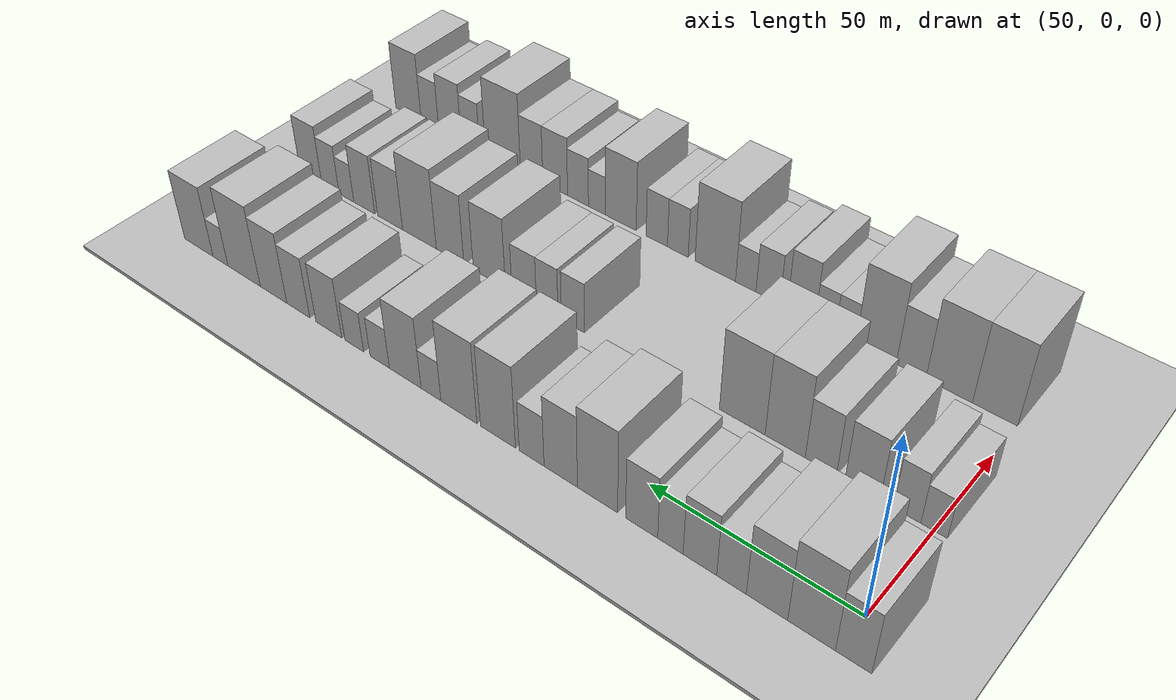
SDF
<sdf version="1.6">
 <world name="default">
  <include><name>ground_plane_1</name><uri>model://HANNAS_ground_plane</uri></include>
  <include>
   <name>ground_plane_2</name>
   <uri>model://HANNAS_ground_plane</uri>
   <pose>100 0 0  0 0 0</pose>
  </include>
  <model name="building_43">
   <static>1</static>
   <pose>50.0000 -3.4062 0 0.000000 0.000000 0.000000</pose>
   <link name="link">
    <pose>0 0 9.00 0 0 0</pose>
    <collision name="collision"><geometry><box><size>20.0000 7.5627 18.0000</size></box></geometry></collision>
    <visual name="visual">
     <cast_shadows>0</cast_shadows>
     <geometry><box><size>20.0000 7.5627 18.0000</size></box></geometry>
     <material>
      <script>
       <uri>model://HANNAS_wall/materials/scripts</uri>
       <uri>model://HANNAS_wall/materials/textures</uri>
       <name>vrc/HANNAS_wall</name>
      </script>
     </material>
    </visual>
   </link>
  </model>
  <model name="building_44">
   <static>1</static>
   <pose>50.0000 5.4814 0 0.000000 0.000000 0.000000</pose>
   <link name="link">
    <pose>0 0 12.00 0 0 0</pose>
    <collision name="collision"><geometry><box><size>20.0000 10.2124 24.0000</size></box></geometry></collision>
    <visual name="visual">
     <cast_shadows>0</cast_shadows>
     <geometry><box><size>20.0000 10.2124 24.0000</size></box></geometry>
     <material>
      <script>
       <uri>model://HANNAS_wall/materials/scripts</uri>
       <uri>model://HANNAS_wall/materials/textures</uri>
       <name>vrc/HANNAS_wall</name>
      </script>
     </material>
    </visual>
   </link>
  </model>
  <model name="building_45">
   <static>1</static>
   <pose>50.0000 15.1778 0 0.000000 0.000000 0.000000</pose>
   <link name="link">
    <pose>0 0 10.50 0 0 0</pose>
    <collision name="collision"><geometry><box><size>20.0000 9.1802 21.0000</size></box></geometry></collision>
    <visual name="visual">
     <cast_shadows>0</cast_shadows>
     <geometry><box><size>20.0000 9.1802 21.0000</size></box></geometry>
     <material>
      <script>
       <uri>model://HANNAS_wall/materials/scripts</uri>
       <uri>model://HANNAS_wall/materials/textures</uri>
       <name>vrc/HANNAS_wall</name>
      </script>
     </material>
    </visual>
   </link>
  </model>
  <model name="building_46">
   <static>1</static>
   <pose>50.0000 23.1349 0 0.000000 0.000000 0.000000</pose>
   <link name="link">
    <pose>0 0 7.50 0 0 0</pose>
    <collision name="collision"><geometry><box><size>20.0000 6.7341 15.0000</size></box></geometry></collision>
    <visual name="visual">
     <cast_shadows>0</cast_shadows>
     <geometry><box><size>20.0000 6.7341 15.0000</size></box></geometry>
     <material>
      <script>
       <uri>model://HANNAS_wall/materials/scripts</uri>
       <uri>model://HANNAS_wall/materials/textures</uri>
       <name>vrc/HANNAS_wall</name>
      </script>
     </material>
    </visual>
   </link>
  </model>
  <model name="building_47">
   <static>1</static>
   <pose>50.0000 30.4223 0 0.000000 0.000000 0.000000</pose>
   <link name="link">
    <pose>0 0 9.00 0 0 0</pose>
    <collision name="collision"><geometry><box><size>20.0000 7.8408 18.0000</size></box></geometry></collision>
    <visual name="visual">
     <cast_shadows>0</cast_shadows>
     <geometry><box><size>20.0000 7.8408 18.0000</size></box></geometry>
     <material>
      <script>
       <uri>model://HANNAS_wall/materials/scripts</uri>
       <uri>model://HANNAS_wall/materials/textures</uri>
       <name>vrc/HANNAS_wall</name>
      </script>
     </material>
    </visual>
   </link>
  </model>
  <model name="building_48">
   <static>1</static>
   <pose>50.0000 37.3837 0 0.000000 0.000000 0.000000</pose>
   <link name="link">
    <pose>0 0 7.50 0 0 0</pose>
    <collision name="collision"><geometry><box><size>20.0000 6.0819 15.0000</size></box></geometry></collision>
    <visual name="visual">
     <cast_shadows>0</cast_shadows>
     <geometry><box><size>20.0000 6.0819 15.0000</size></box></geometry>
     <material>
      <script>
       <uri>model://HANNAS_wall/materials/scripts</uri>
       <uri>model://HANNAS_wall/materials/textures</uri>
       <name>vrc/HANNAS_wall</name>
      </script>
     </material>
    </visual>
   </link>
  </model>
  <model name="building_49">
   <static>1</static>
   <pose>50.0000 44.3541 0 0.000000 0.000000 0.000000</pose>
   <link name="link">
    <pose>0 0 9.00 0 0 0</pose>
    <collision name="collision"><geometry><box><size>20.0000 7.8590 18.0000</size></box></geometry></collision>
    <visual name="visual">
     <cast_shadows>0</cast_shadows>
     <geometry><box><size>20.0000 7.8590 18.0000</size></box></geometry>
     <material>
      <script>
       <uri>model://HANNAS_wall/materials/scripts</uri>
       <uri>model://HANNAS_wall/materials/textures</uri>
       <name>vrc/HANNAS_wall</name>
      </script>
     </material>
    </visual>
   </link>
  </model>
  <model name="building_50">
   <static>1</static>
   <pose>50.0000 55.3763 0 0.000000 0.000000 0.000000</pose>
   <link name="link">
    <pose>0 0 12.00 0 0 0</pose>
    <collision name="collision"><geometry><box><size>20.0000 10.1853 24.0000</size></box></geometry></collision>
    <visual name="visual">
     <cast_shadows>0</cast_shadows>
     <geometry><box><size>20.0000 10.1853 24.0000</size></box></geometry>
     <material>
      <script>
       <uri>model://HANNAS_wall/materials/scripts</uri>
       <uri>model://HANNAS_wall/materials/textures</uri>
       <name>vrc/HANNAS_wall</name>
      </script>
     </material>
    </visual>
   </link>
  </model>
  <model name="building_51">
   <static>1</static>
   <pose>50.0000 64.8415 0 0.000000 0.000000 0.000000</pose>
   <link name="link">
    <pose>0 0 10.50 0 0 0</pose>
    <collision name="collision"><geometry><box><size>20.0000 8.7452 21.0000</size></box></geometry></collision>
    <visual name="visual">
     <cast_shadows>0</cast_shadows>
     <geometry><box><size>20.0000 8.7452 21.0000</size></box></geometry>
     <material>
      <script>
       <uri>model://HANNAS_wall/materials/scripts</uri>
       <uri>model://HANNAS_wall/materials/textures</uri>
       <name>vrc/HANNAS_wall</name>
      </script>
     </material>
    </visual>
   </link>
  </model>
  <model name="building_52">
   <static>1</static>
   <pose>50.0000 72.5484 0 0.000000 0.000000 0.000000</pose>
   <link name="link">
    <pose>0 0 7.50 0 0 0</pose>
    <collision name="collision"><geometry><box><size>20.0000 6.6685 15.0000</size></box></geometry></collision>
    <visual name="visual">
     <cast_shadows>0</cast_shadows>
     <geometry><box><size>20.0000 6.6685 15.0000</size></box></geometry>
     <material>
      <script>
       <uri>model://HANNAS_wall/materials/scripts</uri>
       <uri>model://HANNAS_wall/materials/textures</uri>
       <name>vrc/HANNAS_wall</name>
      </script>
     </material>
    </visual>
   </link>
  </model>
  <model name="building_53">
   <static>1</static>
   <pose>50.0000 81.7205 0 0.000000 0.000000 0.000000</pose>
   <link name="link">
    <pose>0 0 12.00 0 0 0</pose>
    <collision name="collision"><geometry><box><size>20.0000 9.6756 24.0000</size></box></geometry></collision>
    <visual name="visual">
     <cast_shadows>0</cast_shadows>
     <geometry><box><size>20.0000 9.6756 24.0000</size></box></geometry>
     <material>
      <script>
       <uri>model://HANNAS_wall/materials/scripts</uri>
       <uri>model://HANNAS_wall/materials/textures</uri>
       <name>vrc/HANNAS_wall</name>
      </script>
     </material>
    </visual>
   </link>
  </model>
  <model name="building_54">
   <static>1</static>
   <pose>50.0000 92.7112 0 0.000000 0.000000 0.000000</pose>
   <link name="link">
    <pose>0 0 12.00 0 0 0</pose>
    <collision name="collision"><geometry><box><size>20.0000 10.3058 24.0000</size></box></geometry></collision>
    <visual name="visual">
     <cast_shadows>0</cast_shadows>
     <geometry><box><size>20.0000 10.3058 24.0000</size></box></geometry>
     <material>
      <script>
       <uri>model://HANNAS_wall/materials/scripts</uri>
       <uri>model://HANNAS_wall/materials/textures</uri>
       <name>vrc/HANNAS_wall</name>
      </script>
     </material>
    </visual>
   </link>
  </model>
  <model name="building_55">
   <static>1</static>
   <pose>50.0000 100.7912 0 0.000000 0.000000 0.000000</pose>
   <link name="link">
    <pose>0 0 6.00 0 0 0</pose>
    <collision name="collision"><geometry><box><size>20.0000 5.8543 12.0000</size></box></geometry></collision>
    <visual name="visual">
     <cast_shadows>0</cast_shadows>
     <geometry><box><size>20.0000 5.8543 12.0000</size></box></geometry>
     <material>
      <script>
       <uri>model://HANNAS_wall/materials/scripts</uri>
       <uri>model://HANNAS_wall/materials/textures</uri>
       <name>vrc/HANNAS_wall</name>
      </script>
     </material>
    </visual>
   </link>
  </model>
  <model name="building_56">
   <static>1</static>
   <pose>50.0000 108.4864 0 0.000000 0.000000 0.000000</pose>
   <link name="link">
    <pose>0 0 10.50 0 0 0</pose>
    <collision name="collision"><geometry><box><size>20.0000 9.5360 21.0000</size></box></geometry></collision>
    <visual name="visual">
     <cast_shadows>0</cast_shadows>
     <geometry><box><size>20.0000 9.5360 21.0000</size></box></geometry>
     <material>
      <script>
       <uri>model://HANNAS_wall/materials/scripts</uri>
       <uri>model://HANNAS_wall/materials/textures</uri>
       <name>vrc/HANNAS_wall</name>
      </script>
     </material>
    </visual>
   </link>
  </model>
  <model name="building_57">
   <static>1</static>
   <pose>50.0000 116.2179 0 0.000000 0.000000 0.000000</pose>
   <link name="link">
    <pose>0 0 6.00 0 0 0</pose>
    <collision name="collision"><geometry><box><size>20.0000 5.9270 12.0000</size></box></geometry></collision>
    <visual name="visual">
     <cast_shadows>0</cast_shadows>
     <geometry><box><size>20.0000 5.9270 12.0000</size></box></geometry>
     <material>
      <script>
       <uri>model://HANNAS_wall/materials/scripts</uri>
       <uri>model://HANNAS_wall/materials/textures</uri>
       <name>vrc/HANNAS_wall</name>
      </script>
     </material>
    </visual>
   </link>
  </model>
  <model name="building_58">
   <static>1</static>
   <pose>50.0000 124.1192 0 0.000000 0.000000 0.000000</pose>
   <link name="link">
    <pose>0 0 6.00 0 0 0</pose>
    <collision name="collision"><geometry><box><size>20.0000 5.8756 12.0000</size></box></geometry></collision>
    <visual name="visual">
     <cast_shadows>0</cast_shadows>
     <geometry><box><size>20.0000 5.8756 12.0000</size></box></geometry>
     <material>
      <script>
       <uri>model://HANNAS_wall/materials/scripts</uri>
       <uri>model://HANNAS_wall/materials/textures</uri>
       <name>vrc/HANNAS_wall</name>
      </script>
     </material>
    </visual>
   </link>
  </model>
  <model name="building_59">
   <static>1</static>
   <pose>50.0000 132.2405 0 0.000000 0.000000 0.000000</pose>
   <link name="link">
    <pose>0 0 9.00 0 0 0</pose>
    <collision name="collision"><geometry><box><size>20.0000 8.3671 18.0000</size></box></geometry></collision>
    <visual name="visual">
     <cast_shadows>0</cast_shadows>
     <geometry><box><size>20.0000 8.3671 18.0000</size></box></geometry>
     <material>
      <script>
       <uri>model://HANNAS_wall/materials/scripts</uri>
       <uri>model://HANNAS_wall/materials/textures</uri>
       <name>vrc/HANNAS_wall</name>
      </script>
     </material>
    </visual>
   </link>
  </model>
  <model name="building_60">
   <static>1</static>
   <pose>50.0000 142.2452 0 0.000000 0.000000 0.000000</pose>
   <link name="link">
    <pose>0 0 9.00 0 0 0</pose>
    <collision name="collision"><geometry><box><size>20.0000 7.6422 18.0000</size></box></geometry></collision>
    <visual name="visual">
     <cast_shadows>0</cast_shadows>
     <geometry><box><size>20.0000 7.6422 18.0000</size></box></geometry>
     <material>
      <script>
       <uri>model://HANNAS_wall/materials/scripts</uri>
       <uri>model://HANNAS_wall/materials/textures</uri>
       <name>vrc/HANNAS_wall</name>
      </script>
     </material>
    </visual>
   </link>
  </model>
  <model name="building_61">
   <static>1</static>
   <pose>50.0000 150.5704 0 0.000000 0.000000 0.000000</pose>
   <link name="link">
    <pose>0 0 10.50 0 0 0</pose>
    <collision name="collision"><geometry><box><size>20.0000 9.0082 21.0000</size></box></geometry></collision>
    <visual name="visual">
     <cast_shadows>0</cast_shadows>
     <geometry><box><size>20.0000 9.0082 21.0000</size></box></geometry>
     <material>
      <script>
       <uri>model://HANNAS_wall/materials/scripts</uri>
       <uri>model://HANNAS_wall/materials/textures</uri>
       <name>vrc/HANNAS_wall</name>
      </script>
     </material>
    </visual>
   </link>
  </model>
  <model name="building_62">
   <static>1</static>
   <pose>50.0000 160.7252 0 0.000000 0.000000 0.000000</pose>
   <link name="link">
    <pose>0 0 12.00 0 0 0</pose>
    <collision name="collision"><geometry><box><size>20.0000 11.3016 24.0000</size></box></geometry></collision>
    <visual name="visual">
     <cast_shadows>0</cast_shadows>
     <geometry><box><size>20.0000 11.3016 24.0000</size></box></geometry>
     <material>
      <script>
       <uri>model://HANNAS_wall/materials/scripts</uri>
       <uri>model://HANNAS_wall/materials/textures</uri>
       <name>vrc/HANNAS_wall</name>
      </script>
     </material>
    </visual>
   </link>
  </model>
  <model name="building_63">
   <static>1</static>
   <pose>50.0000 169.0401 0 0.000000 0.000000 0.000000</pose>
   <link name="link">
    <pose>0 0 6.00 0 0 0</pose>
    <collision name="collision"><geometry><box><size>20.0000 5.3281 12.0000</size></box></geometry></collision>
    <visual name="visual">
     <cast_shadows>0</cast_shadows>
     <geometry><box><size>20.0000 5.3281 12.0000</size></box></geometry>
     <material>
      <script>
       <uri>model://HANNAS_wall/materials/scripts</uri>
       <uri>model://HANNAS_wall/materials/textures</uri>
       <name>vrc/HANNAS_wall</name>
      </script>
     </material>
    </visual>
   </link>
  </model>
  <model name="building_64">
   <static>1</static>
   <pose>50.0000 176.8985 0 0.000000 0.000000 0.000000</pose>
   <link name="link">
    <pose>0 0 10.50 0 0 0</pose>
    <collision name="collision"><geometry><box><size>20.0000 10.3888 21.0000</size></box></geometry></collision>
    <visual name="visual">
     <cast_shadows>0</cast_shadows>
     <geometry><box><size>20.0000 10.3888 21.0000</size></box></geometry>
     <material>
      <script>
       <uri>model://HANNAS_wall/materials/scripts</uri>
       <uri>model://HANNAS_wall/materials/textures</uri>
       <name>vrc/HANNAS_wall</name>
      </script>
     </material>
    </visual>
   </link>
  </model>
  <model name="building_128">
   <static>1</static>
   <pose>85.0000 -0.1372 0 0.000000 0.000000 0.000000</pose>
   <link name="link">
    <pose>0 0 6.00 0 0 0</pose>
    <collision name="collision"><geometry><box><size>20.0000 5.8301 12.0000</size></box></geometry></collision>
    <visual name="visual">
     <cast_shadows>0</cast_shadows>
     <geometry><box><size>20.0000 5.8301 12.0000</size></box></geometry>
     <material>
      <script>
       <uri>model://HANNAS_wall/materials/scripts</uri>
       <uri>model://HANNAS_wall/materials/textures</uri>
       <name>vrc/HANNAS_wall</name>
      </script>
     </material>
    </visual>
   </link>
  </model>
  <model name="building_129">
   <static>1</static>
   <pose>85.0000 5.8269 0 0.000000 0.000000 0.000000</pose>
   <link name="link">
    <pose>0 0 7.50 0 0 0</pose>
    <collision name="collision"><geometry><box><size>20.0000 6.0981 15.0000</size></box></geometry></collision>
    <visual name="visual">
     <cast_shadows>0</cast_shadows>
     <geometry><box><size>20.0000 6.0981 15.0000</size></box></geometry>
     <material>
      <script>
       <uri>model://HANNAS_wall/materials/scripts</uri>
       <uri>model://HANNAS_wall/materials/textures</uri>
       <name>vrc/HANNAS_wall</name>
      </script>
     </material>
    </visual>
   </link>
  </model>
  <model name="building_130">
   <static>1</static>
   <pose>85.0000 15.9266 0 0.000000 0.000000 0.000000</pose>
   <link name="link">
    <pose>0 0 9.00 0 0 0</pose>
    <collision name="collision"><geometry><box><size>20.0000 8.1014 18.0000</size></box></geometry></collision>
    <visual name="visual">
     <cast_shadows>0</cast_shadows>
     <geometry><box><size>20.0000 8.1014 18.0000</size></box></geometry>
     <material>
      <script>
       <uri>model://HANNAS_wall/materials/scripts</uri>
       <uri>model://HANNAS_wall/materials/textures</uri>
       <name>vrc/HANNAS_wall</name>
      </script>
     </material>
    </visual>
   </link>
  </model>
  <model name="building_131">
   <static>1</static>
   <pose>85.0000 25.6741 0 0.000000 0.000000 0.000000</pose>
   <link name="link">
    <pose>0 0 9.00 0 0 0</pose>
    <collision name="collision"><geometry><box><size>20.0000 7.3935 18.0000</size></box></geometry></collision>
    <visual name="visual">
     <cast_shadows>0</cast_shadows>
     <geometry><box><size>20.0000 7.3935 18.0000</size></box></geometry>
     <material>
      <script>
       <uri>model://HANNAS_wall/materials/scripts</uri>
       <uri>model://HANNAS_wall/materials/textures</uri>
       <name>vrc/HANNAS_wall</name>
      </script>
     </material>
    </visual>
   </link>
  </model>
  <model name="building_132">
   <static>1</static>
   <pose>85.0000 34.2773 0 0.000000 0.000000 0.000000</pose>
   <link name="link">
    <pose>0 0 12.00 0 0 0</pose>
    <collision name="collision"><geometry><box><size>20.0000 9.8131 24.0000</size></box></geometry></collision>
    <visual name="visual">
     <cast_shadows>0</cast_shadows>
     <geometry><box><size>20.0000 9.8131 24.0000</size></box></geometry>
     <material>
      <script>
       <uri>model://HANNAS_wall/materials/scripts</uri>
       <uri>model://HANNAS_wall/materials/textures</uri>
       <name>vrc/HANNAS_wall</name>
      </script>
     </material>
    </visual>
   </link>
  </model>
  <model name="building_133">
   <static>1</static>
   <pose>85.0000 44.9520 0 0.000000 0.000000 0.000000</pose>
   <link name="link">
    <pose>0 0 12.00 0 0 0</pose>
    <collision name="collision"><geometry><box><size>20.0000 11.5362 24.0000</size></box></geometry></collision>
    <visual name="visual">
     <cast_shadows>0</cast_shadows>
     <geometry><box><size>20.0000 11.5362 24.0000</size></box></geometry>
     <material>
      <script>
       <uri>model://HANNAS_wall/materials/scripts</uri>
       <uri>model://HANNAS_wall/materials/textures</uri>
       <name>vrc/HANNAS_wall</name>
      </script>
     </material>
    </visual>
   </link>
  </model>
  <model name="building_134">
   <static>1</static>
   <pose>85.0000 90.7140 0 0.000000 0.000000 0.000000</pose>
   <link name="link">
    <pose>0 0 7.50 0 0 0</pose>
    <collision name="collision"><geometry><box><size>20.0000 6.6626 15.0000</size></box></geometry></collision>
    <visual name="visual">
     <cast_shadows>0</cast_shadows>
     <geometry><box><size>20.0000 6.6626 15.0000</size></box></geometry>
     <material>
      <script>
       <uri>model://HANNAS_wall/materials/scripts</uri>
       <uri>model://HANNAS_wall/materials/textures</uri>
       <name>vrc/HANNAS_wall</name>
      </script>
     </material>
    </visual>
   </link>
  </model>
  <model name="building_135">
   <static>1</static>
   <pose>85.0000 98.2668 0 0.000000 0.000000 0.000000</pose>
   <link name="link">
    <pose>0 0 7.50 0 0 0</pose>
    <collision name="collision"><geometry><box><size>20.0000 6.4431 15.0000</size></box></geometry></collision>
    <visual name="visual">
     <cast_shadows>0</cast_shadows>
     <geometry><box><size>20.0000 6.4431 15.0000</size></box></geometry>
     <material>
      <script>
       <uri>model://HANNAS_wall/materials/scripts</uri>
       <uri>model://HANNAS_wall/materials/textures</uri>
       <name>vrc/HANNAS_wall</name>
      </script>
     </material>
    </visual>
   </link>
  </model>
  <model name="building_136">
   <static>1</static>
   <pose>85.0000 105.1728 0 0.000000 0.000000 0.000000</pose>
   <link name="link">
    <pose>0 0 7.50 0 0 0</pose>
    <collision name="collision"><geometry><box><size>20.0000 7.3689 15.0000</size></box></geometry></collision>
    <visual name="visual">
     <cast_shadows>0</cast_shadows>
     <geometry><box><size>20.0000 7.3689 15.0000</size></box></geometry>
     <material>
      <script>
       <uri>model://HANNAS_wall/materials/scripts</uri>
       <uri>model://HANNAS_wall/materials/textures</uri>
       <name>vrc/HANNAS_wall</name>
      </script>
     </material>
    </visual>
   </link>
  </model>
  <model name="building_137">
   <static>1</static>
   <pose>85.0000 115.8487 0 0.000000 0.000000 0.000000</pose>
   <link name="link">
    <pose>0 0 10.50 0 0 0</pose>
    <collision name="collision"><geometry><box><size>20.0000 9.9828 21.0000</size></box></geometry></collision>
    <visual name="visual">
     <cast_shadows>0</cast_shadows>
     <geometry><box><size>20.0000 9.9828 21.0000</size></box></geometry>
     <material>
      <script>
       <uri>model://HANNAS_wall/materials/scripts</uri>
       <uri>model://HANNAS_wall/materials/textures</uri>
       <name>vrc/HANNAS_wall</name>
      </script>
     </material>
    </visual>
   </link>
  </model>
  <model name="building_138">
   <static>1</static>
   <pose>85.0000 128.2979 0 0.000000 0.000000 0.000000</pose>
   <link name="link">
    <pose>0 0 10.50 0 0 0</pose>
    <collision name="collision"><geometry><box><size>20.0000 8.9155 21.0000</size></box></geometry></collision>
    <visual name="visual">
     <cast_shadows>0</cast_shadows>
     <geometry><box><size>20.0000 8.9155 21.0000</size></box></geometry>
     <material>
      <script>
       <uri>model://HANNAS_wall/materials/scripts</uri>
       <uri>model://HANNAS_wall/materials/textures</uri>
       <name>vrc/HANNAS_wall</name>
      </script>
     </material>
    </visual>
   </link>
  </model>
  <model name="building_139">
   <static>1</static>
   <pose>85.0000 138.3532 0 0.000000 0.000000 0.000000</pose>
   <link name="link">
    <pose>0 0 12.00 0 0 0</pose>
    <collision name="collision"><geometry><box><size>20.0000 11.1952 24.0000</size></box></geometry></collision>
    <visual name="visual">
     <cast_shadows>0</cast_shadows>
     <geometry><box><size>20.0000 11.1952 24.0000</size></box></geometry>
     <material>
      <script>
       <uri>model://HANNAS_wall/materials/scripts</uri>
       <uri>model://HANNAS_wall/materials/textures</uri>
       <name>vrc/HANNAS_wall</name>
      </script>
     </material>
    </visual>
   </link>
  </model>
  <model name="building_140">
   <static>1</static>
   <pose>85.0000 148.1897 0 0.000000 0.000000 0.000000</pose>
   <link name="link">
    <pose>0 0 9.00 0 0 0</pose>
    <collision name="collision"><geometry><box><size>20.0000 8.4777 18.0000</size></box></geometry></collision>
    <visual name="visual">
     <cast_shadows>0</cast_shadows>
     <geometry><box><size>20.0000 8.4777 18.0000</size></box></geometry>
     <material>
      <script>
       <uri>model://HANNAS_wall/materials/scripts</uri>
       <uri>model://HANNAS_wall/materials/textures</uri>
       <name>vrc/HANNAS_wall</name>
      </script>
     </material>
    </visual>
   </link>
  </model>
  <model name="building_141">
   <static>1</static>
   <pose>85.0000 157.0969 0 0.000000 0.000000 0.000000</pose>
   <link name="link">
    <pose>0 0 9.00 0 0 0</pose>
    <collision name="collision"><geometry><box><size>20.0000 7.3367 18.0000</size></box></geometry></collision>
    <visual name="visual">
     <cast_shadows>0</cast_shadows>
     <geometry><box><size>20.0000 7.3367 18.0000</size></box></geometry>
     <material>
      <script>
       <uri>model://HANNAS_wall/materials/scripts</uri>
       <uri>model://HANNAS_wall/materials/textures</uri>
       <name>vrc/HANNAS_wall</name>
      </script>
     </material>
    </visual>
   </link>
  </model>
  <model name="building_142">
   <static>1</static>
   <pose>85.0000 163.3522 0 0.000000 0.000000 0.000000</pose>
   <link name="link">
    <pose>0 0 6.00 0 0 0</pose>
    <collision name="collision"><geometry><box><size>20.0000 5.1738 12.0000</size></box></geometry></collision>
    <visual name="visual">
     <cast_shadows>0</cast_shadows>
     <geometry><box><size>20.0000 5.1738 12.0000</size></box></geometry>
     <material>
      <script>
       <uri>model://HANNAS_wall/materials/scripts</uri>
       <uri>model://HANNAS_wall/materials/textures</uri>
       <name>vrc/HANNAS_wall</name>
      </script>
     </material>
    </visual>
   </link>
  </model>
  <model name="building_143">
   <static>1</static>
   <pose>85.0000 169.0538 0 0.000000 0.000000 0.000000</pose>
   <link name="link">
    <pose>0 0 7.50 0 0 0</pose>
    <collision name="collision"><geometry><box><size>20.0000 6.2294 15.0000</size></box></geometry></collision>
    <visual name="visual">
     <cast_shadows>0</cast_shadows>
     <geometry><box><size>20.0000 6.2294 15.0000</size></box></geometry>
     <material>
      <script>
       <uri>model://HANNAS_wall/materials/scripts</uri>
       <uri>model://HANNAS_wall/materials/textures</uri>
       <name>vrc/HANNAS_wall</name>
      </script>
     </material>
    </visual>
   </link>
  </model>
  <model name="building_144">
   <static>1</static>
   <pose>85.0000 176.1074 0 0.000000 0.000000 0.000000</pose>
   <link name="link">
    <pose>0 0 9.00 0 0 0</pose>
    <collision name="collision"><geometry><box><size>20.0000 7.8778 18.0000</size></box></geometry></collision>
    <visual name="visual">
     <cast_shadows>0</cast_shadows>
     <geometry><box><size>20.0000 7.8778 18.0000</size></box></geometry>
     <material>
      <script>
       <uri>model://HANNAS_wall/materials/scripts</uri>
       <uri>model://HANNAS_wall/materials/textures</uri>
       <name>vrc/HANNAS_wall</name>
      </script>
     </material>
    </visual>
   </link>
  </model>
  <model name="building_204">
   <static>1</static>
   <pose>120.0000 4.9977 0 0.000000 0.000000 0.000000</pose>
   <link name="link">
    <pose>0 0 12.00 0 0 0</pose>
    <collision name="collision"><geometry><box><size>20.0000 10.4630 24.0000</size></box></geometry></collision>
    <visual name="visual">
     <cast_shadows>0</cast_shadows>
     <geometry><box><size>20.0000 10.4630 24.0000</size></box></geometry>
     <material>
      <script>
       <uri>model://HANNAS_wall/materials/scripts</uri>
       <uri>model://HANNAS_wall/materials/textures</uri>
       <name>vrc/HANNAS_wall</name>
      </script>
     </material>
    </visual>
   </link>
  </model>
  <model name="building_205">
   <static>1</static>
   <pose>120.0000 15.7755 0 0.000000 0.000000 0.000000</pose>
   <link name="link">
    <pose>0 0 12.00 0 0 0</pose>
    <collision name="collision"><geometry><box><size>20.0000 11.0927 24.0000</size></box></geometry></collision>
    <visual name="visual">
     <cast_shadows>0</cast_shadows>
     <geometry><box><size>20.0000 11.0927 24.0000</size></box></geometry>
     <material>
      <script>
       <uri>model://HANNAS_wall/materials/scripts</uri>
       <uri>model://HANNAS_wall/materials/textures</uri>
       <name>vrc/HANNAS_wall</name>
      </script>
     </material>
    </visual>
   </link>
  </model>
  <model name="building_206">
   <static>1</static>
   <pose>120.0000 24.9586 0 0.000000 0.000000 0.000000</pose>
   <link name="link">
    <pose>0 0 9.00 0 0 0</pose>
    <collision name="collision"><geometry><box><size>20.0000 7.2733 18.0000</size></box></geometry></collision>
    <visual name="visual">
     <cast_shadows>0</cast_shadows>
     <geometry><box><size>20.0000 7.2733 18.0000</size></box></geometry>
     <material>
      <script>
       <uri>model://HANNAS_wall/materials/scripts</uri>
       <uri>model://HANNAS_wall/materials/textures</uri>
       <name>vrc/HANNAS_wall</name>
      </script>
     </material>
    </visual>
   </link>
  </model>
  <model name="building_207">
   <static>1</static>
   <pose>120.0000 33.6749 0 0.000000 0.000000 0.000000</pose>
   <link name="link">
    <pose>0 0 12.00 0 0 0</pose>
    <collision name="collision"><geometry><box><size>20.0000 10.1594 24.0000</size></box></geometry></collision>
    <visual name="visual">
     <cast_shadows>0</cast_shadows>
     <geometry><box><size>20.0000 10.1594 24.0000</size></box></geometry>
     <material>
      <script>
       <uri>model://HANNAS_wall/materials/scripts</uri>
       <uri>model://HANNAS_wall/materials/textures</uri>
       <name>vrc/HANNAS_wall</name>
      </script>
     </material>
    </visual>
   </link>
  </model>
  <model name="building_208">
   <static>1</static>
   <pose>120.0000 41.3865 0 0.000000 0.000000 0.000000</pose>
   <link name="link">
    <pose>0 0 6.00 0 0 0</pose>
    <collision name="collision"><geometry><box><size>20.0000 5.2638 12.0000</size></box></geometry></collision>
    <visual name="visual">
     <cast_shadows>0</cast_shadows>
     <geometry><box><size>20.0000 5.2638 12.0000</size></box></geometry>
     <material>
      <script>
       <uri>model://HANNAS_wall/materials/scripts</uri>
       <uri>model://HANNAS_wall/materials/textures</uri>
       <name>vrc/HANNAS_wall</name>
      </script>
     </material>
    </visual>
   </link>
  </model>
  <model name="building_209">
   <static>1</static>
   <pose>120.0000 46.6972 0 0.000000 0.000000 0.000000</pose>
   <link name="link">
    <pose>0 0 6.00 0 0 0</pose>
    <collision name="collision"><geometry><box><size>20.0000 5.3575 12.0000</size></box></geometry></collision>
    <visual name="visual">
     <cast_shadows>0</cast_shadows>
     <geometry><box><size>20.0000 5.3575 12.0000</size></box></geometry>
     <material>
      <script>
       <uri>model://HANNAS_wall/materials/scripts</uri>
       <uri>model://HANNAS_wall/materials/textures</uri>
       <name>vrc/HANNAS_wall</name>
      </script>
     </material>
    </visual>
   </link>
  </model>
  <model name="building_210">
   <static>1</static>
   <pose>120.0000 53.0868 0 0.000000 0.000000 0.000000</pose>
   <link name="link">
    <pose>0 0 9.00 0 0 0</pose>
    <collision name="collision"><geometry><box><size>20.0000 7.4218 18.0000</size></box></geometry></collision>
    <visual name="visual">
     <cast_shadows>0</cast_shadows>
     <geometry><box><size>20.0000 7.4218 18.0000</size></box></geometry>
     <material>
      <script>
       <uri>model://HANNAS_wall/materials/scripts</uri>
       <uri>model://HANNAS_wall/materials/textures</uri>
       <name>vrc/HANNAS_wall</name>
      </script>
     </material>
    </visual>
   </link>
  </model>
  <model name="building_211">
   <static>1</static>
   <pose>120.0000 62.0696 0 0.000000 0.000000 0.000000</pose>
   <link name="link">
    <pose>0 0 7.50 0 0 0</pose>
    <collision name="collision"><geometry><box><size>20.0000 6.5438 15.0000</size></box></geometry></collision>
    <visual name="visual">
     <cast_shadows>0</cast_shadows>
     <geometry><box><size>20.0000 6.5438 15.0000</size></box></geometry>
     <material>
      <script>
       <uri>model://HANNAS_wall/materials/scripts</uri>
       <uri>model://HANNAS_wall/materials/textures</uri>
       <name>vrc/HANNAS_wall</name>
      </script>
     </material>
    </visual>
   </link>
  </model>
  <model name="building_212">
   <static>1</static>
   <pose>120.0000 68.1843 0 0.000000 0.000000 0.000000</pose>
   <link name="link">
    <pose>0 0 6.00 0 0 0</pose>
    <collision name="collision"><geometry><box><size>20.0000 5.6856 12.0000</size></box></geometry></collision>
    <visual name="visual">
     <cast_shadows>0</cast_shadows>
     <geometry><box><size>20.0000 5.6856 12.0000</size></box></geometry>
     <material>
      <script>
       <uri>model://HANNAS_wall/materials/scripts</uri>
       <uri>model://HANNAS_wall/materials/textures</uri>
       <name>vrc/HANNAS_wall</name>
      </script>
     </material>
    </visual>
   </link>
  </model>
  <model name="building_213">
   <static>1</static>
   <pose>120.0000 76.8005 0 0.000000 0.000000 0.000000</pose>
   <link name="link">
    <pose>0 0 12.00 0 0 0</pose>
    <collision name="collision"><geometry><box><size>20.0000 11.5469 24.0000</size></box></geometry></collision>
    <visual name="visual">
     <cast_shadows>0</cast_shadows>
     <geometry><box><size>20.0000 11.5469 24.0000</size></box></geometry>
     <material>
      <script>
       <uri>model://HANNAS_wall/materials/scripts</uri>
       <uri>model://HANNAS_wall/materials/textures</uri>
       <name>vrc/HANNAS_wall</name>
      </script>
     </material>
    </visual>
   </link>
  </model>
  <model name="building_214">
   <static>1</static>
   <pose>120.0000 87.6299 0 0.000000 0.000000 0.000000</pose>
   <link name="link">
    <pose>0 0 7.50 0 0 0</pose>
    <collision name="collision"><geometry><box><size>20.0000 6.1119 15.0000</size></box></geometry></collision>
    <visual name="visual">
     <cast_shadows>0</cast_shadows>
     <geometry><box><size>20.0000 6.1119 15.0000</size></box></geometry>
     <material>
      <script>
       <uri>model://HANNAS_wall/materials/scripts</uri>
       <uri>model://HANNAS_wall/materials/textures</uri>
       <name>vrc/HANNAS_wall</name>
      </script>
     </material>
    </visual>
   </link>
  </model>
  <model name="building_215">
   <static>1</static>
   <pose>120.0000 93.8645 0 0.000000 0.000000 0.000000</pose>
   <link name="link">
    <pose>0 0 7.50 0 0 0</pose>
    <collision name="collision"><geometry><box><size>20.0000 6.3574 15.0000</size></box></geometry></collision>
    <visual name="visual">
     <cast_shadows>0</cast_shadows>
     <geometry><box><size>20.0000 6.3574 15.0000</size></box></geometry>
     <material>
      <script>
       <uri>model://HANNAS_wall/materials/scripts</uri>
       <uri>model://HANNAS_wall/materials/textures</uri>
       <name>vrc/HANNAS_wall</name>
      </script>
     </material>
    </visual>
   </link>
  </model>
  <model name="building_216">
   <static>1</static>
   <pose>120.0000 104.8482 0 0.000000 0.000000 0.000000</pose>
   <link name="link">
    <pose>0 0 10.50 0 0 0</pose>
    <collision name="collision"><geometry><box><size>20.0000 9.6100 21.0000</size></box></geometry></collision>
    <visual name="visual">
     <cast_shadows>0</cast_shadows>
     <geometry><box><size>20.0000 9.6100 21.0000</size></box></geometry>
     <material>
      <script>
       <uri>model://HANNAS_wall/materials/scripts</uri>
       <uri>model://HANNAS_wall/materials/textures</uri>
       <name>vrc/HANNAS_wall</name>
      </script>
     </material>
    </visual>
   </link>
  </model>
  <model name="building_217">
   <static>1</static>
   <pose>120.0000 112.2576 0 0.000000 0.000000 0.000000</pose>
   <link name="link">
    <pose>0 0 6.00 0 0 0</pose>
    <collision name="collision"><geometry><box><size>20.0000 5.2086 12.0000</size></box></geometry></collision>
    <visual name="visual">
     <cast_shadows>0</cast_shadows>
     <geometry><box><size>20.0000 5.2086 12.0000</size></box></geometry>
     <material>
      <script>
       <uri>model://HANNAS_wall/materials/scripts</uri>
       <uri>model://HANNAS_wall/materials/textures</uri>
       <name>vrc/HANNAS_wall</name>
      </script>
     </material>
    </visual>
   </link>
  </model>
  <model name="building_218">
   <static>1</static>
   <pose>120.0000 118.1877 0 0.000000 0.000000 0.000000</pose>
   <link name="link">
    <pose>0 0 7.50 0 0 0</pose>
    <collision name="collision"><geometry><box><size>20.0000 6.6516 15.0000</size></box></geometry></collision>
    <visual name="visual">
     <cast_shadows>0</cast_shadows>
     <geometry><box><size>20.0000 6.6516 15.0000</size></box></geometry>
     <material>
      <script>
       <uri>model://HANNAS_wall/materials/scripts</uri>
       <uri>model://HANNAS_wall/materials/textures</uri>
       <name>vrc/HANNAS_wall</name>
      </script>
     </material>
    </visual>
   </link>
  </model>
  <model name="building_219">
   <static>1</static>
   <pose>120.0000 125.5226 0 0.000000 0.000000 0.000000</pose>
   <link name="link">
    <pose>0 0 9.00 0 0 0</pose>
    <collision name="collision"><geometry><box><size>20.0000 8.0182 18.0000</size></box></geometry></collision>
    <visual name="visual">
     <cast_shadows>0</cast_shadows>
     <geometry><box><size>20.0000 8.0182 18.0000</size></box></geometry>
     <material>
      <script>
       <uri>model://HANNAS_wall/materials/scripts</uri>
       <uri>model://HANNAS_wall/materials/textures</uri>
       <name>vrc/HANNAS_wall</name>
      </script>
     </material>
    </visual>
   </link>
  </model>
  <model name="building_220">
   <static>1</static>
   <pose>120.0000 133.2610 0 0.000000 0.000000 0.000000</pose>
   <link name="link">
    <pose>0 0 9.00 0 0 0</pose>
    <collision name="collision"><geometry><box><size>20.0000 7.4586 18.0000</size></box></geometry></collision>
    <visual name="visual">
     <cast_shadows>0</cast_shadows>
     <geometry><box><size>20.0000 7.4586 18.0000</size></box></geometry>
     <material>
      <script>
       <uri>model://HANNAS_wall/materials/scripts</uri>
       <uri>model://HANNAS_wall/materials/textures</uri>
       <name>vrc/HANNAS_wall</name>
      </script>
     </material>
    </visual>
   </link>
  </model>
  <model name="building_221">
   <static>1</static>
   <pose>120.0000 142.9633 0 0.000000 0.000000 0.000000</pose>
   <link name="link">
    <pose>0 0 12.00 0 0 0</pose>
    <collision name="collision"><geometry><box><size>20.0000 11.9461 24.0000</size></box></geometry></collision>
    <visual name="visual">
     <cast_shadows>0</cast_shadows>
     <geometry><box><size>20.0000 11.9461 24.0000</size></box></geometry>
     <material>
      <script>
       <uri>model://HANNAS_wall/materials/scripts</uri>
       <uri>model://HANNAS_wall/materials/textures</uri>
       <name>vrc/HANNAS_wall</name>
      </script>
     </material>
    </visual>
   </link>
  </model>
  <model name="building_222">
   <static>1</static>
   <pose>120.0000 154.1453 0 0.000000 0.000000 0.000000</pose>
   <link name="link">
    <pose>0 0 7.50 0 0 0</pose>
    <collision name="collision"><geometry><box><size>20.0000 6.4178 15.0000</size></box></geometry></collision>
    <visual name="visual">
     <cast_shadows>0</cast_shadows>
     <geometry><box><size>20.0000 6.4178 15.0000</size></box></geometry>
     <material>
      <script>
       <uri>model://HANNAS_wall/materials/scripts</uri>
       <uri>model://HANNAS_wall/materials/textures</uri>
       <name>vrc/HANNAS_wall</name>
      </script>
     </material>
    </visual>
   </link>
  </model>
  <model name="building_223">
   <static>1</static>
   <pose>120.0000 161.3785 0 0.000000 0.000000 0.000000</pose>
   <link name="link">
    <pose>0 0 9.00 0 0 0</pose>
    <collision name="collision"><geometry><box><size>20.0000 8.0486 18.0000</size></box></geometry></collision>
    <visual name="visual">
     <cast_shadows>0</cast_shadows>
     <geometry><box><size>20.0000 8.0486 18.0000</size></box></geometry>
     <material>
      <script>
       <uri>model://HANNAS_wall/materials/scripts</uri>
       <uri>model://HANNAS_wall/materials/textures</uri>
       <name>vrc/HANNAS_wall</name>
      </script>
     </material>
    </visual>
   </link>
  </model>
  <model name="building_224">
   <static>1</static>
   <pose>120.0000 168.5857 0 0.000000 0.000000 0.000000</pose>
   <link name="link">
    <pose>0 0 7.50 0 0 0</pose>
    <collision name="collision"><geometry><box><size>20.0000 6.3657 15.0000</size></box></geometry></collision>
    <visual name="visual">
     <cast_shadows>0</cast_shadows>
     <geometry><box><size>20.0000 6.3657 15.0000</size></box></geometry>
     <material>
      <script>
       <uri>model://HANNAS_wall/materials/scripts</uri>
       <uri>model://HANNAS_wall/materials/textures</uri>
       <name>vrc/HANNAS_wall</name>
      </script>
     </material>
    </visual>
   </link>
  </model>
  <model name="building_225">
   <static>1</static>
   <pose>120.0000 176.4648 0 0.000000 0.000000 0.000000</pose>
   <link name="link">
    <pose>0 0 10.50 0 0 0</pose>
    <collision name="collision"><geometry><box><size>20.0000 9.3926 21.0000</size></box></geometry></collision>
    <visual name="visual">
     <cast_shadows>0</cast_shadows>
     <geometry><box><size>20.0000 9.3926 21.0000</size></box></geometry>
     <material>
      <script>
       <uri>model://HANNAS_wall/materials/scripts</uri>
       <uri>model://HANNAS_wall/materials/textures</uri>
       <name>vrc/HANNAS_wall</name>
      </script>
     </material>
    </visual>
   </link>
  </model>
 </world>
</sdf>
